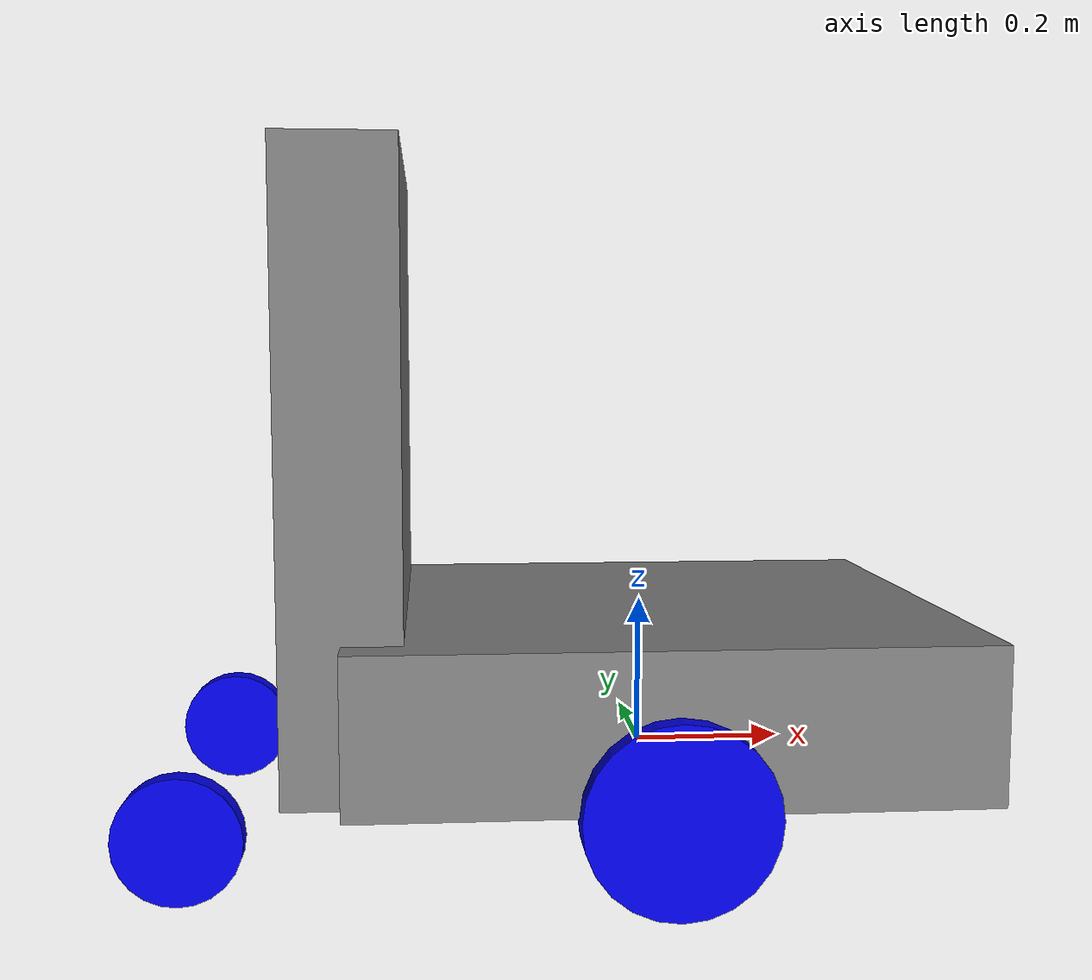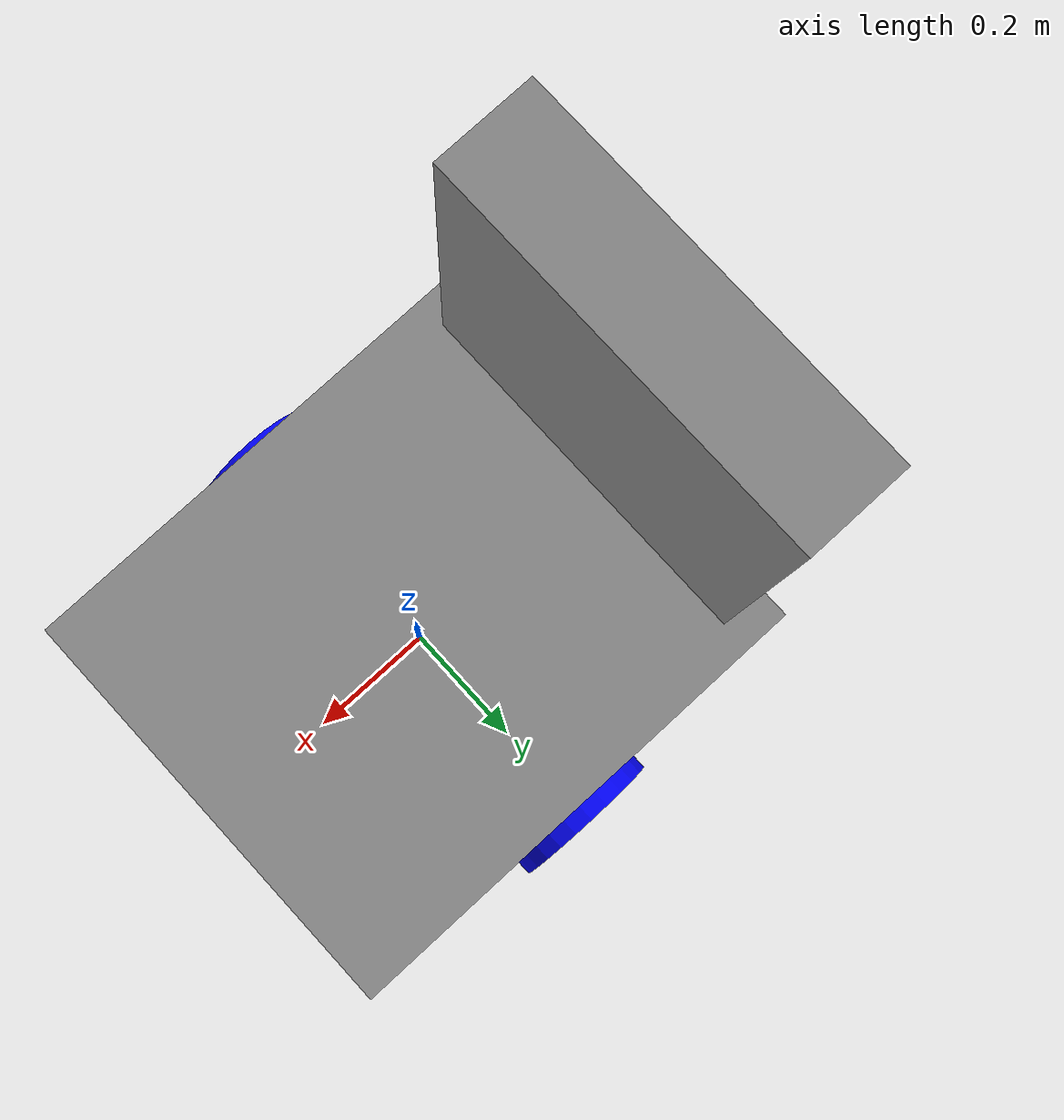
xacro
<?xml version="1.0"?>
<robot name="wheelchair">
    <link name="base_link">
        <visual>
            <geometry>
                <box size="0.8 0.7 0.2"/>
            </geometry>
            <origin rpy="0 0 0" xyz="0.0 0 0.1"/>
            <material name="leather">
                <color rgba="0.5 0.5 0.5 1"/>
                <!--texture filename="package://jaco_description/urdf/leather.jpg" /-->
            </material>
        </visual>
        <collision>
            <geometry>
                <box size="0.8 0.7 0.2"/>
            </geometry>
            <origin rpy="0 0 0" xyz="0.0 0 0.1"/>
        </collision>
        <inertial>
            <mass value="150"/>
            <inertia ixx="0.4" iyy="0.4" izz="0.2" ixy="0.0" ixz="0.0" iyz="0.0" />
        </inertial>
    </link>

    <link name="back">
        <visual>
            <geometry>
                <box size="0.15 0.6 0.8"/>
            </geometry>
            <!--origin rpy="0 0 0" xyz="-0.5 0 0.3"/-->
            <material name="leather" />
        </visual>
    </link>

    <joint name="base_link_to_back" type="fixed">
        <parent link="base_link"/>
        <child link="back"/>
        <origin xyz="-0.4 0 0.4"/>
    </joint>

   <!-- main driving wheels -->
    <link name="left_wheel">
        <visual>
            <geometry>
                <cylinder length="0.06" radius="0.12"/>
            </geometry>
            <origin rpy="1.57075 0 0" xyz="0.0 0.0 0.0"/>
            <material name="wheel">
                <color rgba="0.0 0.0 0.9 1"/>
                <!--texture filename="package://jaco_description/urdf/leather.jpg" /-->
            </material>
        </visual>
        <collision>
            <geometry>
                <cylinder length="0.06" radius="0.12"/>
            </geometry>
            <origin rpy="1.57075 0 0" xyz="0.0 0.0 0.0"/>
        </collision>
    </link>
    <joint name="base_link_to_left_wheel" type="continuous">
        <parent link="base_link"/>
        <child link="left_wheel"/>
        <origin xyz="0.0 0.35 0.0"/>
        <axis xyz="0 1 0"/>
    </joint>

    <link name="right_wheel">
        <visual>
            <geometry>
                <cylinder length="0.06" radius="0.12"/>
            </geometry>
            <origin rpy="1.57075 0 0" xyz="0.0 0.0 0.0"/>
            <material name="wheel"/>
        </visual>
        <collision>
            <geometry>
                <cylinder length="0.06" radius="0.12"/>
            </geometry>
            <origin rpy="1.57075 0 0" xyz="0.0 0.0 0.0"/>
        </collision>
    </link>
    <joint name="base_link_to_right_wheel" type="continuous">
        <parent link="base_link"/>
        <child link="right_wheel"/>
        <origin xyz="0.0 -0.35 0.0"/>
        <axis xyz="0 1 0"/>
    </joint>

   <!-- rear castor wheels -->
    <link name="left_castor">
        <visual>
            <geometry>
                <cylinder length="0.03" radius="0.08"/>
            </geometry>
            <origin rpy="1.57075 0 0" xyz="0.0 0.0 0.0"/>
            <material name="wheel">
                <color rgba="0.0 0.0 0.9 1"/>
                <!--texture filename="package://jaco_description/urdf/leather.jpg" /-->
            </material>
        </visual>
        <collision>
            <geometry>
                <cylinder length="0.03" radius="0.08"/>
            </geometry>
            <origin rpy="1.57075 0 0" xyz="0.0 0.0 0.0"/>
        </collision>
    </link>
    <joint name="base_link_to_left_castor" type="fixed">
        <parent link="base_link"/>
        <child link="left_castor"/>
        <origin xyz="-0.6 0.27 -0.04"/>
    </joint>

    <link name="right_castor">
        <visual>
            <geometry>
                <cylinder length="0.03" radius="0.08"/>
            </geometry>
            <origin rpy="1.57075 0 0" xyz="0.0 0.0 0.0"/>
            <material name="wheel">
                <color rgba="0.0 0.0 0.9 1"/>
                <!--texture filename="package://jaco_description/urdf/leather.jpg" /-->
            </material>
        </visual>
        <collision>
            <geometry>
                <cylinder length="0.03" radius="0.08"/>
            </geometry>
            <origin rpy="1.57075 0 0" xyz="0.0 0.0 0.0"/>
        </collision>
    </link>
    <joint name="base_link_to_right_castor" type="fixed">
        <parent link="base_link"/>
        <child link="right_castor"/>
        <origin xyz="-0.6 -0.27 -0.04"/>
    </joint>
</robot>
